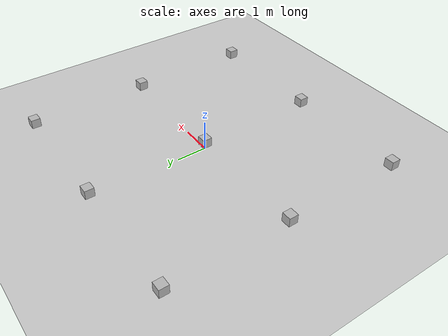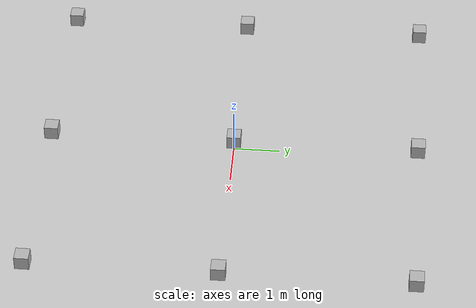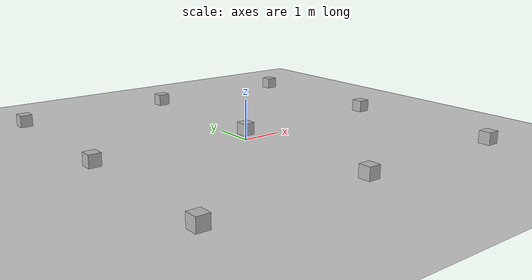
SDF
<sdf version="1.4">
 <world name="default">
  <include><uri>model://sun</uri></include>
  <include><uri>model://ground_plane</uri></include>
  <physics type="ode">
   <real_time_update_rate>1000.0</real_time_update_rate>
   <max_step_size>0.001</max_step_size>
   <real_time_factor>1</real_time_factor>
   <ode>
    <solver>
     <type>quick</type>
     <iters>150</iters>
     <precon_iters>0</precon_iters>
     <sor>1.400000</sor>
     <use_dynamic_moi_rescaling>1</use_dynamic_moi_rescaling>
    </solver>
    <constraints>
     <cfm>0.00001</cfm>
     <erp>0.2</erp>
     <contact_max_correcting_vel>2000.000000</contact_max_correcting_vel>
     <contact_surface_layer>0.01000</contact_surface_layer>
    </constraints>
   </ode>
  </physics>
  <model name="DynamicObstacle1">
   <pose>-4 4 0.15 0 0 0</pose>
   <include><uri>model://dynamic_obstacle</uri></include>
  </model>
  <model name="DynamicObstacle2">
   <pose>-4 0 0.15 0 0 0</pose>
   <include><uri>model://dynamic_obstacle</uri></include>
  </model>
  <model name="DynamicObstacle3">
   <pose>-4 -4 0.15 0 0 0</pose>
   <include><uri>model://dynamic_obstacle</uri></include>
  </model>
  <model name="DynamicObstacle4">
   <pose>0 4 0.15 0 0 0</pose>
   <include><uri>model://dynamic_obstacle</uri></include>
  </model>
  <model name="DynamicObstacle5">
   <pose>0 0 0.15 0 0 0</pose>
   <include><uri>model://dynamic_obstacle</uri></include>
  </model>
  <model name="DynamicObstacle6">
   <pose>0 -4 0.15 0 0 0</pose>
   <include><uri>model://dynamic_obstacle</uri></include>
  </model>
  <model name="DynamicObstacle7">
   <pose>4 4 0.15 0 0 0</pose>
   <include><uri>model://dynamic_obstacle</uri></include>
  </model>
  <model name="DynamicObstacle8">
   <pose>4 0 0.15 0 0 0</pose>
   <include><uri>model://dynamic_obstacle</uri></include>
  </model>
  <model name="DynamicObstacle9">
   <pose>4 -4 0.15 0 0 0</pose>
   <include><uri>model://dynamic_obstacle</uri></include>
  </model>
  <scene><ambient>0.4 0.4 0.4 1</ambient><background>0.7 0.7 0.7 1</background><shadows>true</shadows></scene>
 </world>
</sdf>

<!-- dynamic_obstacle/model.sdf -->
<sdf version="1.6">
  <model name="DynamicObstacle">
    <pose>0 0 0.15 0 0 0</pose>
    <link name="link">
      <gravity>1</gravity>
      <inertial>
        <inertia>
          <ixx>0.17</ixx>
          <ixy>0.00</ixy>
          <ixz>0.00</ixz>
          <iyy>0.17</iyy>
          <iyz>0.00</iyz>
          <izz>0.17</izz>
        </inertia>
        <mass>100</mass>
      </inertial>
      <kinematic>false</kinematic>
      <collision name="collision">
        <max_contacts>0</max_contacts>
        <geometry>
          <box>
            <size>0.3 0.3 0.3</size>
          </box>
        </geometry>
        <surface>
          <friction>
            <ode>
              <mu>0.0</mu>
              <mu2>0.0</mu2>
            </ode>
          </friction>
          <bounce>
            <restitution_coefficient>0.0</restitution_coefficient>
            <threshold>0.0</threshold>
          </bounce>
          <contact>
            <ode>
              <kp>2000000000</kp>
              <kd>1</kd>
              <max_vel>0.01</max_vel>
              <min_depth>0.00</min_depth>
            </ode>
          </contact>
        </surface>
      </collision>
      <visual name="visual">
        <geometry>
          <box>
            <size>0.3 0.3 0.3</size>
          </box>
        </geometry>
      </visual>
    </link>
    <plugin name="random" filename="libRandomVelocityPlugin.so">
      <link>link</link>
      <initial_velocity>0 0.05 0</initial_velocity>
      <velocity_factor>0.2</velocity_factor>
      <update_period>5</update_period>
      <min_z>-5</min_z>
      <max_z>0</max_z>
    </plugin>
  </model>
</sdf>
